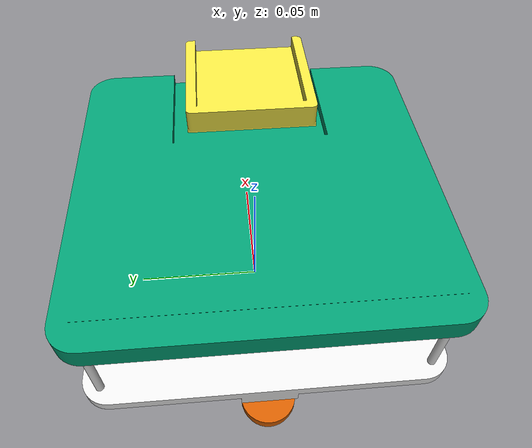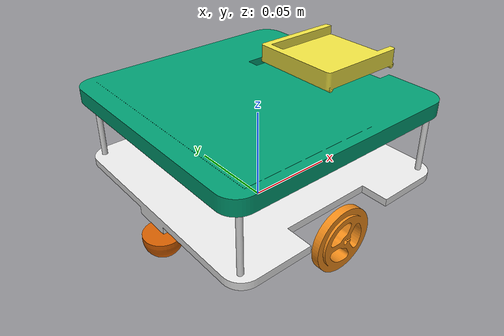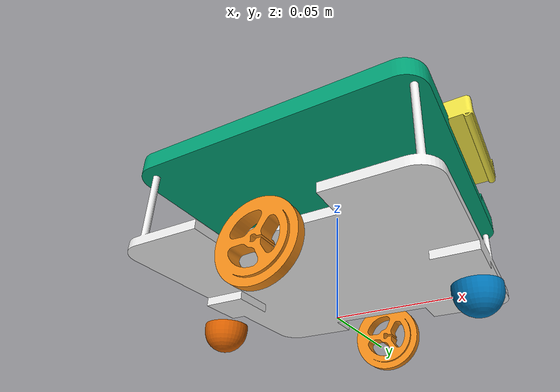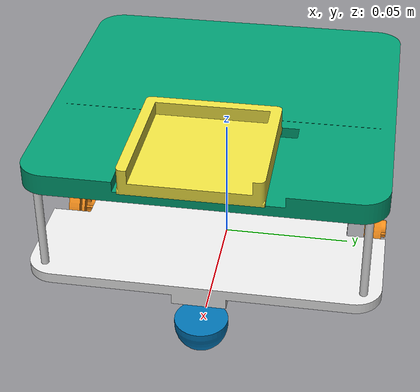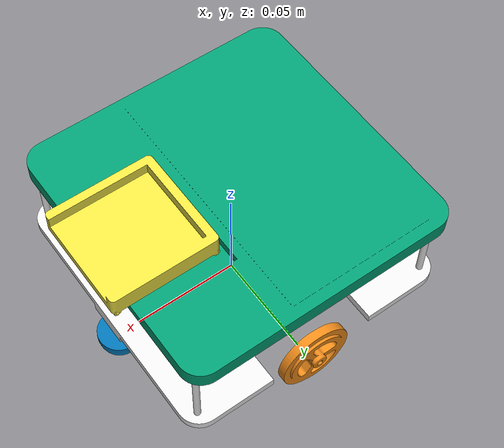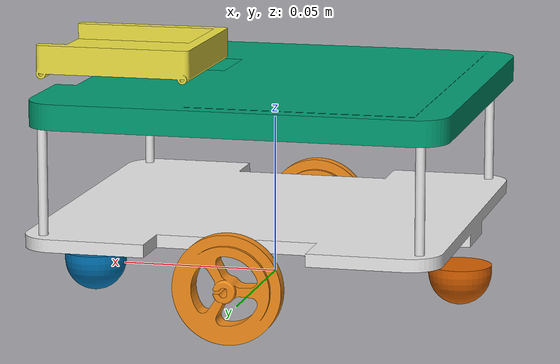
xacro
<?xml version="1.0"?>
<robot name="cam_bot" xmlns:xacro="http://ros.org/wiki/xacro">

<link name="base_footprint" />

<joint name="base_footprint_joint" type="fixed">
    <parent link="base_footprint" />
    <child link="base_link"/>
    <origin xyz="0.0 0.0 0.015" rpy="0.0 0.0 0.0" />
</joint>

<link name="base_link">
<inertial>
        <mass value="15"/>
        <origin xyz="0.0 0.0 0.0"/>
        <inertia
          ixx="0.01042" ixy="0.001177" ixz="-0.0008871"
          iyy="0.01045" iyz="0.0002226"
          izz="0.01817"/>
      </inertial>
    <visual>
        <geometry>
          <mesh filename="package://rover_description/meshes/stl/base.stl"/>
        </geometry>
      </visual>
      <collision>
        <geometry>
          <mesh filename="package://rover_description/meshes/stl/base.stl"/>
        </geometry>
      </collision>
</link>

<joint name="upper_plate_joint" type="fixed">
    <parent link="base_link" />
    <child link="upper_plate"/>
    <origin xyz="0.0 0.0 0.04" rpy="0.0 0.0 0.0" />
</joint>

<link name="upper_plate">
<inertial>
        <mass value="0.3"/>
        <origin xyz="0.0 0.0 0.0"/>
        <inertia
          ixx="0.01042" ixy="0.001177" ixz="-0.0008871"
          iyy="0.01045" iyz="0.0002226"
          izz="0.01817"/>
      </inertial>
    <visual>
        <geometry>
          <mesh filename="package://rover_description/meshes/stl/upper_base_plate.stl"/>
        </geometry>
      </visual>
      <collision>
        <geometry>
          <mesh filename="package://rover_description/meshes/stl/upper_base_plate.stl"/>
        </geometry>
      </collision>
</link>

<joint name="tray_joint" type="revolute">
    <parent link="upper_plate" />
    <child link="tray"/>
    <origin xyz="0.07 -0.026 0.01" rpy="0.0 0.0 0.0" />
    <axis xyz="0 1 0" />
    <limit lower="-3.142" upper="3.142" effort="150.0" velocity="1.5"/>
</joint>

<link name="tray">
<inertial>
        <mass value="0.3"/>
        <origin xyz="0.0 0.0 0.0"/>
        <inertia
          ixx="0.01042" ixy="0.001177" ixz="-0.0008871"
          iyy="0.01045" iyz="0.0002226"
          izz="0.01817"/>
      </inertial>
    <visual>
        <geometry>
          <mesh filename="package://rover_description/meshes/stl/tray.stl"/>
        </geometry>
      </visual>
      <collision>
        <geometry>
          <mesh filename="package://rover_description/meshes/stl/tray.stl"/>
        </geometry>
      </collision>
</link>

<!-- CAster Integrated -->

<joint name="caster_front_joint" type="fixed">
    <parent link="base_link" />
    <child link="caster_front"/>
    <origin xyz="0.06 0 -0.02" rpy="0.0 0.0 0.0" />
</joint>

<link name="caster_front">
<inertial>
        <mass value="0.3"/>
        <origin xyz="0.0 0.0 0.0"/>
        <inertia
          ixx="0.01042" ixy="0.001177" ixz="-0.0008871"
          iyy="0.01045" iyz="0.0002226"
          izz="0.01817"/>
      </inertial>
    <visual>
        <geometry>
          <mesh filename="package://rover_description/meshes/stl/caster_dummy.stl"/>
        </geometry>
      </visual>
      <collision>
        <geometry>
          <mesh filename="package://rover_description/meshes/stl/caster_dummy.stl"/>
        </geometry>
        <surface>
        <friction>
          <ode>
            <mu>0</mu>
            <mu2>0</mu2>
            <slip1>1.0</slip1>
            <slip2>1.0</slip2>
          </ode>
        </friction>
      </surface>
      </collision>
</link>

<joint name="caster_rear_joint" type="fixed">
    <parent link="base_link" />
    <child link="caster_rear"/>
    <origin xyz="-0.06 0 -0.018" rpy="0.0 0.0 0" />
</joint>

<link name="caster_rear">
<inertial>
        <mass value="0.3"/>
        <origin xyz="0.0 0.0 0.0"/>
        <inertia
          ixx="0.01042" ixy="0.001177" ixz="-0.0008871"
          iyy="0.01045" iyz="0.0002226"
          izz="0.01817"/>
      </inertial>
    <visual>
        <geometry>
          <mesh filename="package://rover_description/meshes/stl/caster_dummy.stl"/>
        </geometry>
      </visual>
      <collision>
        <geometry>
          <mesh filename="package://rover_description/meshes/stl/caster_dummy.stl"/>
        </geometry>
        <surface>
        <friction>
          <ode>
            <mu>0</mu>
            <mu2>0</mu2>
            <slip1>1.0</slip1>
            <slip2>1.0</slip2>
          </ode>
        </friction>
      </surface>
      </collision>
</link>

<!-- Wheels of the bot -->

<joint name="right_wheel_joint" type="continuous">
    <parent link="base_link" />
    <child link="wheel_right"/>
    <origin xyz="0 -0.06 -0.007" rpy="0.0 0.0 0.0" />
    <axis xyz="0 1 0" />
    <limit lower="-3.142" upper="3.142" effort="150.0" velocity="1.5"/>
</joint>

<link name="wheel_right">
<inertial>
        <mass value="0.3"/>
        <origin xyz="0.0 0.0 0.0"/>
        <inertia
          ixx="0.01042" ixy="0.001177" ixz="-0.0008871"
          iyy="0.01045" iyz="0.0002226"
          izz="0.01817"/>
      </inertial>
    <visual>
        <geometry>
          <mesh filename="package://rover_description/meshes/stl/wheel.stl"/>
        </geometry>
      </visual>
      <collision>
        <geometry>
          <mesh filename="package://rover_description/meshes/stl/wheel.stl"/>
        </geometry>
      </collision>
</link>

<joint name="left_wheel_joint" type="continuous">
    <parent link="base_link" />
    <child link="wheel_left"/>
    <origin xyz="0 0.06 -0.007" rpy="0.0 0.0 0.0" />
    <axis xyz="0 1 0" />
    <limit lower="-3.142" upper="3.142" effort="150.0" velocity="1.5"/>
</joint>

<link name="wheel_left">
<inertial>
        <mass value="0.3"/>
        <origin xyz="0.0 0.0 0.0" rpy="0.0 0.0 3.142" />
        <inertia
          ixx="0.01042" ixy="0.001177" ixz="-0.0008871"
          iyy="0.01045" iyz="0.0002226"
          izz="0.01817"/>
      </inertial>
    <visual>
        <geometry>
          <mesh filename="package://rover_description/meshes/stl/wheel.stl"/>
        </geometry>
      </visual>
      <collision>
        <geometry>
          <mesh filename="package://rover_description/meshes/stl/wheel.stl"/>
        </geometry>
      </collision>
</link>

<!-- GAZEBO -->

<gazebo>
    <plugin filename="libgazebo_ros_diff_drive.so" name="differential_drive_controller">
      <alwaysOn>true</alwaysOn>
      <updateRate>20</updateRate>
      <leftJoint>left_wheel_joint</leftJoint>
      <rightJoint>right_wheel_joint</rightJoint>
      <wheelSeparation>0.4</wheelSeparation>
      <wheelDiameter>0.2</wheelDiameter>
      <torque>0.1</torque>
      <commandTopic>cmd_vel</commandTopic>
      <odometryTopic>odom</odometryTopic>
      <odometryFrame>odom</odometryFrame>
      <robotBaseFrame>base_link</robotBaseFrame>
    </plugin>
  </gazebo>

<gazebo reference="upper_plate">
    <self_collide>1</self_collide>
  </gazebo>
  <gazebo reference="tray">
    <self_collide>1</self_collide>
  </gazebo>
  <gazebo reference="wheel_right">
    <self_collide>1</self_collide>
  </gazebo>
  <gazebo reference="wheel_left">
    <self_collide>1</self_collide>
  </gazebo>

    <gazebo reference="liwheel_rightnk1">
    <material>Gazebo/Orange</material>
  </gazebo>
    <gazebo reference="wheel_right">
    <material>Gazebo/Orange</material>
  </gazebo>
  <gazebo reference="wheel_left">
    <material>Gazebo/Orange</material>
  </gazebo>
    <gazebo reference="base_link">
    <material>Gazebo/White</material>
  </gazebo>

</robot>
